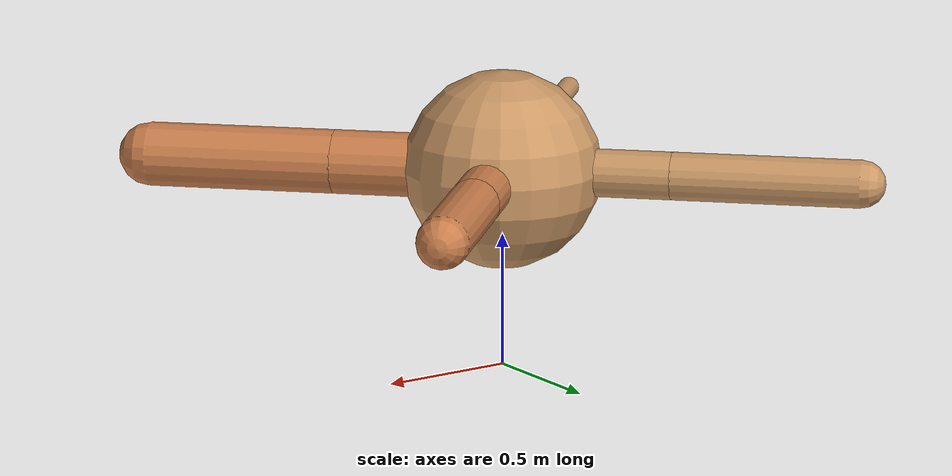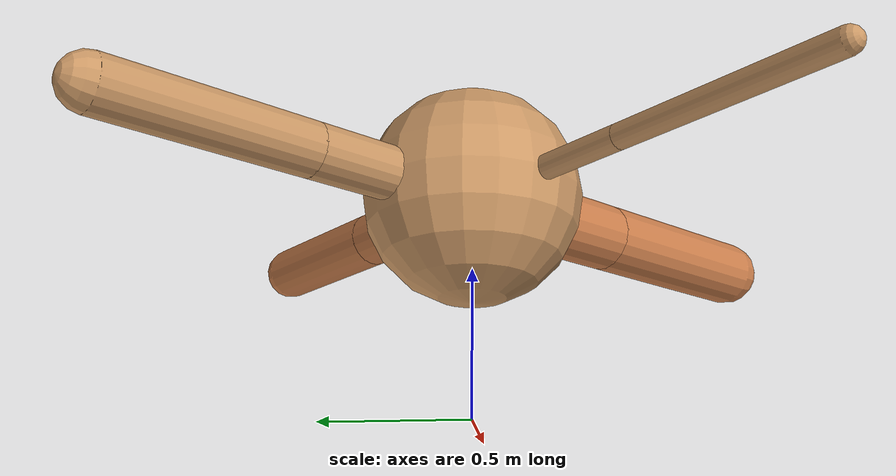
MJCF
<?xml version="1.0" ?>
<mujoco model="ant">

	<compiler angle="degree" coordinate="local" inertiafromgeom="true"/>

	<option integrator="RK4" timestep="0.01"/>

	<custom>

		<numeric data="0.0 0.0 0.55 1.0 0.0 0.0 0.0 0.0 1.0 0.0 -1.0 0.0 -1.0 0.0 1.0" name="init_qpos"/>

	</custom>

	<default>

		<joint armature="1" damping="1" limited="true"/>

		<geom conaffinity="0" condim="3" density="5.0" friction="1.5 0.1 0.1" margin="0.01" rgba="0.8 0.6 0.4 1"/>

	</default>

	<worldbody>

		<body name="torso" pos="0 0 0.75">

			<geom name="torso_geom" pos="0 0 0" size="0.369907616707731" type="sphere"/>

			<!--joint armature="0" damping="0" limited="false" margin="0.01" name="root" pos="0 0 0" type="free"/-->

			<body name="front_left_leg" pos="0 0 0">

				<geom fromto="0 0 0 0.2 0.2 0" name="aux_1_geom" size="0.0959604019584513" type="capsule" rgba=".8 .5 .3 1"/>

				<body name="aux_1" pos="0.2 0.2 0">

					<joint axis="0 0 1" name="hip_1" pos="0.0 0.0 0.0" range="-40 40" type="hinge"/>

					<geom fromto="0 0 0 0.202296715890434 0.202296715890434 0" name="left_leg_geom" size="0.0959604019584513" type="capsule" rgba=".8 .5 .3 1"/>

					<body pos="0.202296715890434 0.202296715890434 0" name="front_left_foot">

						<joint axis="-1 1 0" name="ankle_1" pos="0.0 0.0 0.0" range="30 100" type="hinge"/>

						<geom fromto="0 0 0 0.404593431780868 0.404593431780868 0" name="left_ankle_geom" size="0.0959604019584513" type="capsule" rgba=".8 .5 .3 1"/>

					</body>

				</body>

			</body>

			<body name="front_right_leg" pos="0 0 0">

				<geom fromto="0 0 0 -0.2 0.2 0" name="aux_2_geom" size="0.0893025616930362" type="capsule"/>

				<body name="aux_2" pos="-0.2 0.2 0">

					<joint axis="0 0 1" name="hip_2" pos="0.0 0.0 0.0" range="-40 40" type="hinge"/>

					<geom fromto="0 0 0 -0.24832993942884196 0.24832993942884196 0" name="right_leg_geom" size="0.0893025616930362" type="capsule"/>

					<body pos="-0.24832993942884196 0.24832993942884196 0" name="front_right_foot">

						<joint axis="1 1 0" name="ankle_2" pos="0.0 0.0 0.0" range="-100 -30" type="hinge"/>

						<geom fromto="0 0 0 -0.4966598788576839 0.4966598788576839 0" name="right_ankle_geom" size="0.0893025616930362" type="capsule"/>

					</body>

				</body>

			</body>

			<body name="left_back_leg" pos="0 0 0">

				<geom fromto="0 0 0 -0.2 -0.2 0" name="aux_3_geom" size="0.04101387437553317" type="capsule"/>

				<body name="aux_3" pos="-0.2 -0.2 0">

					<joint axis="0 0 1" name="hip_3" pos="0.0 0.0 0.0" range="-40 40" type="hinge"/>

					<geom fromto="0 0 0 -0.2731391039806365 -0.2731391039806365 0" name="back_leg_geom" size="0.04101387437553317" type="capsule"/>

					<body pos="-0.2731391039806365 -0.2731391039806365 0" name="left_back_foot">

						<joint axis="-1 1 0" name="ankle_3" pos="0.0 0.0 0.0" range="-100 -30" type="hinge"/>

						<geom fromto="0 0 0 -0.546278207961273 -0.546278207961273 0" name="third_ankle_geom" size="0.04101387437553317" type="capsule"/>

					</body>

				</body>

			</body>

			<body name="right_back_leg" pos="0 0 0">

				<geom fromto="0 0 0 0.2 -0.2 0" name="aux_4_geom" size="0.11997484372664494" type="capsule" rgba=".8 .5 .3 1"/>

				<body name="aux_4" pos="0.2 -0.2 0">

					<joint axis="0 0 1" name="hip_4" pos="0.0 0.0 0.0" range="-40 40" type="hinge"/>

					<geom fromto="0 0 0 0.25005143404150165 -0.25005143404150165 0" name="rightback_leg_geom" size="0.11997484372664494" type="capsule" rgba=".8 .5 .3 1"/>

					<body pos="0.25005143404150165 -0.25005143404150165 0" name="right_back_foot">

						<joint axis="1 1 0" name="ankle_4" pos="0.0 0.0 0.0" range="30 100" type="hinge"/>

						<geom fromto="0 0 0 0.5001028680830033 -0.5001028680830033 0" name="fourth_ankle_geom" size="0.11997484372664494" type="capsule" rgba=".8 .5 .3 1"/>

					</body>

				</body>

			</body>

		</body>

	</worldbody>

	<actuator>

		<motor ctrllimited="true" ctrlrange="-1.0 1.0" joint="hip_4" gear="150"/>

		<motor ctrllimited="true" ctrlrange="-1.0 1.0" joint="ankle_4" gear="150"/>

		<motor ctrllimited="true" ctrlrange="-1.0 1.0" joint="hip_1" gear="150"/>

		<motor ctrllimited="true" ctrlrange="-1.0 1.0" joint="ankle_1" gear="150"/>

		<motor ctrllimited="true" ctrlrange="-1.0 1.0" joint="hip_2" gear="150"/>

		<motor ctrllimited="true" ctrlrange="-1.0 1.0" joint="ankle_2" gear="150"/>

		<motor ctrllimited="true" ctrlrange="-1.0 1.0" joint="hip_3" gear="150"/>

		<motor ctrllimited="true" ctrlrange="-1.0 1.0" joint="ankle_3" gear="150"/>

	</actuator>

</mujoco>
